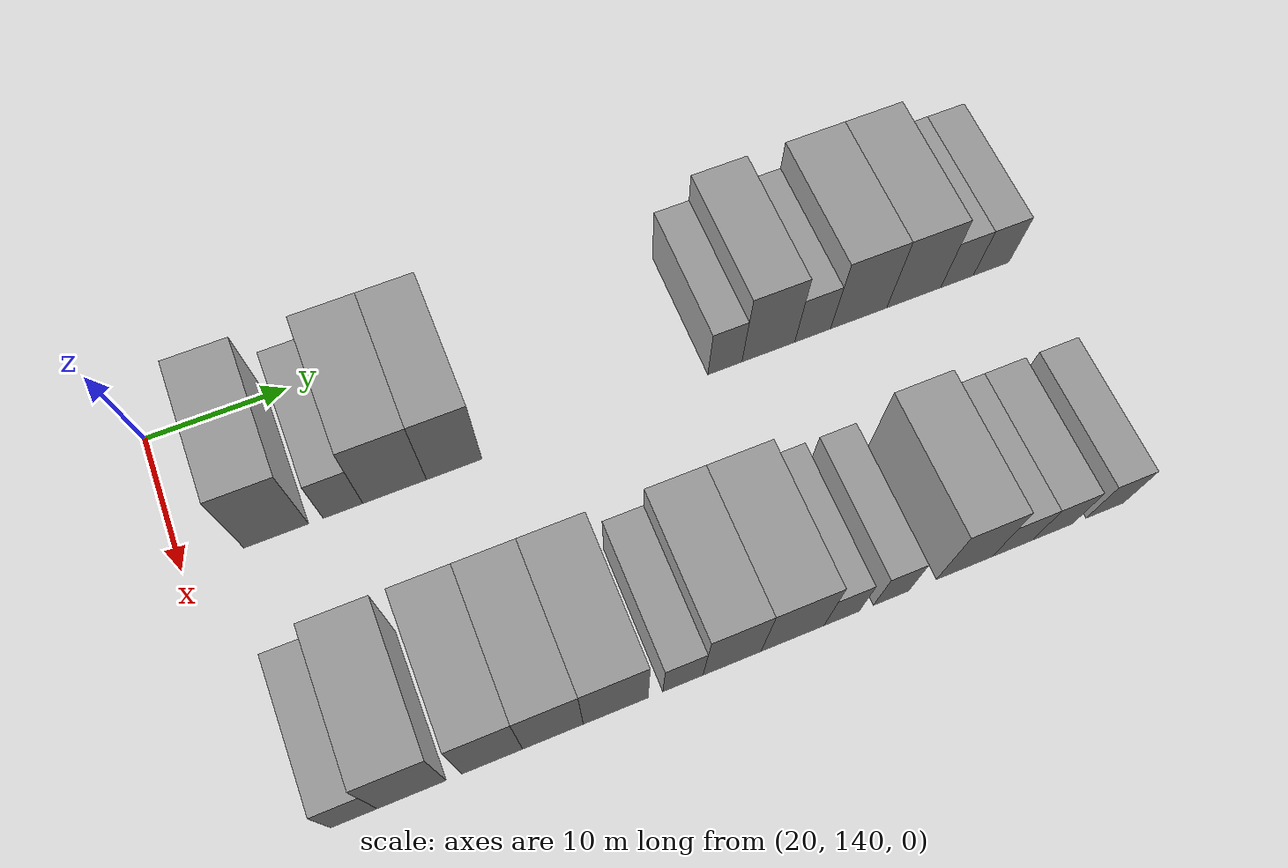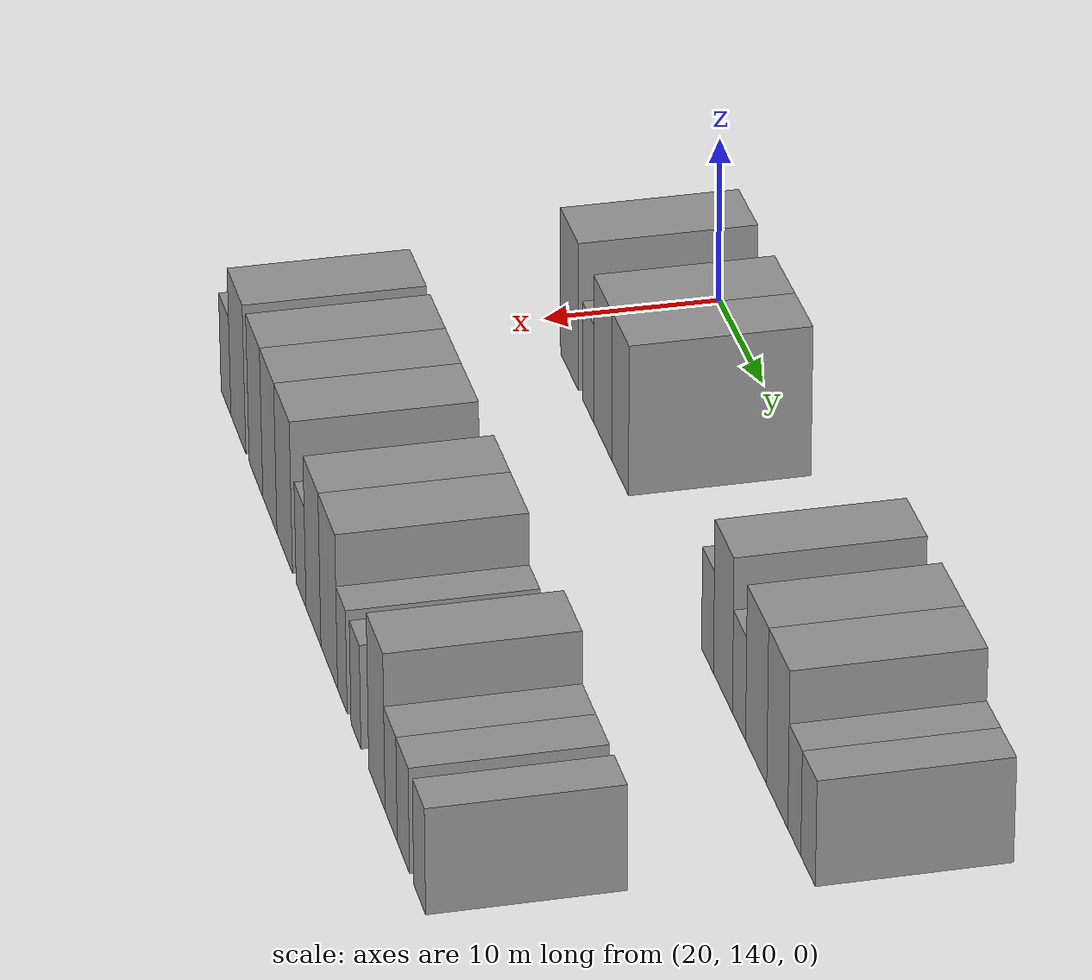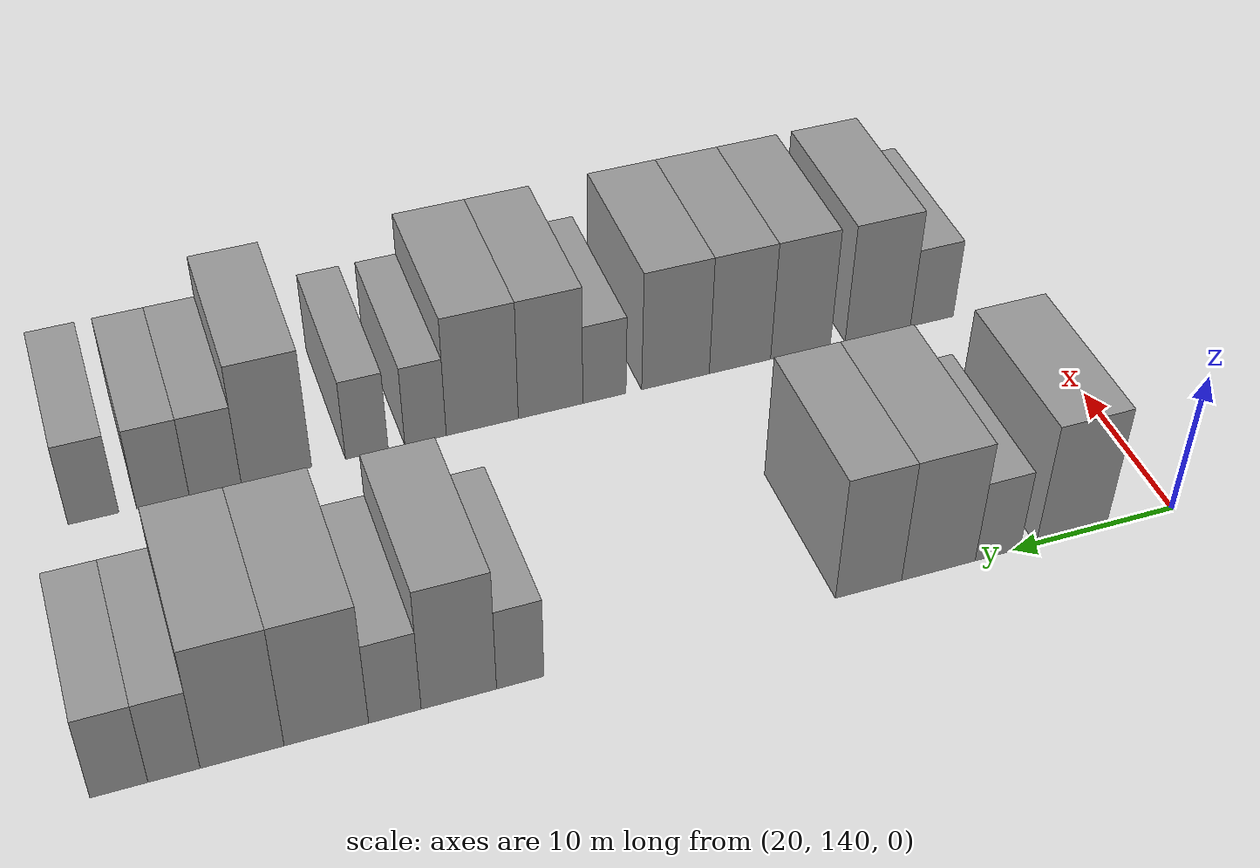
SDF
<sdf version="1.6">
 <world name="default">
  <model name="building_90">
   <static>1</static>
   <pose>25.0000 146.3913 0 0.000000 0.000000 0.000000</pose>
   <link name="link">
    <pose>0 0 4.50 0 0 0</pose>
    <collision name="collision"><geometry><box><size>10.0000 4.4065 9.0000</size></box></geometry></collision>
    <visual name="visual">
     <cast_shadows>0</cast_shadows>
     <geometry><box><size>10.0000 4.4065 9.0000</size></box></geometry>
     <material>
      <script>
       <uri>model://grey_wall/materials/scripts</uri>
       <uri>model://grey_wall/materials/textures</uri>
       <name>vrc/grey_wall</name>
      </script>
     </material>
    </visual>
   </link>
  </model>
  <model name="building_91">
   <static>1</static>
   <pose>25.0000 150.9687 0 0.000000 0.000000 0.000000</pose>
   <link name="link">
    <pose>0 0 3.00 0 0 0</pose>
    <collision name="collision"><geometry><box><size>10.0000 2.7483 6.0000</size></box></geometry></collision>
    <visual name="visual">
     <cast_shadows>0</cast_shadows>
     <geometry><box><size>10.0000 2.7483 6.0000</size></box></geometry>
     <material>
      <script>
       <uri>model://grey_wall/materials/scripts</uri>
       <uri>model://grey_wall/materials/textures</uri>
       <name>vrc/grey_wall</name>
      </script>
     </material>
    </visual>
   </link>
  </model>
  <model name="building_92">
   <static>1</static>
   <pose>25.0000 154.5702 0 0.000000 0.000000 0.000000</pose>
   <link name="link">
    <pose>0 0 4.50 0 0 0</pose>
    <collision name="collision"><geometry><box><size>10.0000 4.4548 9.0000</size></box></geometry></collision>
    <visual name="visual">
     <cast_shadows>0</cast_shadows>
     <geometry><box><size>10.0000 4.4548 9.0000</size></box></geometry>
     <material>
      <script>
       <uri>model://grey_wall/materials/scripts</uri>
       <uri>model://grey_wall/materials/textures</uri>
       <name>vrc/grey_wall</name>
      </script>
     </material>
    </visual>
   </link>
  </model>
  <model name="building_93">
   <static>1</static>
   <pose>25.0000 158.7625 0 0.000000 0.000000 0.000000</pose>
   <link name="link">
    <pose>0 0 4.50 0 0 0</pose>
    <collision name="collision"><geometry><box><size>10.0000 3.9299 9.0000</size></box></geometry></collision>
    <visual name="visual">
     <cast_shadows>0</cast_shadows>
     <geometry><box><size>10.0000 3.9299 9.0000</size></box></geometry>
     <material>
      <script>
       <uri>model://grey_wall/materials/scripts</uri>
       <uri>model://grey_wall/materials/textures</uri>
       <name>vrc/grey_wall</name>
      </script>
     </material>
    </visual>
   </link>
  </model>
  <model name="building_94">
   <static>1</static>
   <pose>25.0000 178.5883 0 0.000000 0.000000 0.000000</pose>
   <link name="link">
    <pose>0 0 3.00 0 0 0</pose>
    <collision name="collision"><geometry><box><size>10.0000 2.5739 6.0000</size></box></geometry></collision>
    <visual name="visual">
     <cast_shadows>0</cast_shadows>
     <geometry><box><size>10.0000 2.5739 6.0000</size></box></geometry>
     <material>
      <script>
       <uri>model://grey_wall/materials/scripts</uri>
       <uri>model://grey_wall/materials/textures</uri>
       <name>vrc/grey_wall</name>
      </script>
     </material>
    </visual>
   </link>
  </model>
  <model name="building_95">
   <static>1</static>
   <pose>25.0000 181.8974 0 0.000000 0.000000 0.000000</pose>
   <link name="link">
    <pose>0 0 4.50 0 0 0</pose>
    <collision name="collision"><geometry><box><size>10.0000 4.0443 9.0000</size></box></geometry></collision>
    <visual name="visual">
     <cast_shadows>0</cast_shadows>
     <geometry><box><size>10.0000 4.0443 9.0000</size></box></geometry>
     <material>
      <script>
       <uri>model://grey_wall/materials/scripts</uri>
       <uri>model://grey_wall/materials/textures</uri>
       <name>vrc/grey_wall</name>
      </script>
     </material>
    </visual>
   </link>
  </model>
  <model name="building_96">
   <static>1</static>
   <pose>25.0000 185.3083 0 0.000000 0.000000 0.000000</pose>
   <link name="link">
    <pose>0 0 3.00 0 0 0</pose>
    <collision name="collision"><geometry><box><size>10.0000 2.7775 6.0000</size></box></geometry></collision>
    <visual name="visual">
     <cast_shadows>0</cast_shadows>
     <geometry><box><size>10.0000 2.7775 6.0000</size></box></geometry>
     <material>
      <script>
       <uri>model://grey_wall/materials/scripts</uri>
       <uri>model://grey_wall/materials/textures</uri>
       <name>vrc/grey_wall</name>
      </script>
     </material>
    </visual>
   </link>
  </model>
  <model name="building_97">
   <static>1</static>
   <pose>25.0000 188.8926 0 0.000000 0.000000 0.000000</pose>
   <link name="link">
    <pose>0 0 4.50 0 0 0</pose>
    <collision name="collision"><geometry><box><size>10.0000 4.3911 9.0000</size></box></geometry></collision>
    <visual name="visual">
     <cast_shadows>0</cast_shadows>
     <geometry><box><size>10.0000 4.3911 9.0000</size></box></geometry>
     <material>
      <script>
       <uri>model://grey_wall/materials/scripts</uri>
       <uri>model://grey_wall/materials/textures</uri>
       <name>vrc/grey_wall</name>
      </script>
     </material>
    </visual>
   </link>
  </model>
  <model name="building_98">
   <static>1</static>
   <pose>25.0000 193.2294 0 0.000000 0.000000 0.000000</pose>
   <link name="link">
    <pose>0 0 4.50 0 0 0</pose>
    <collision name="collision"><geometry><box><size>10.0000 4.2827 9.0000</size></box></geometry></collision>
    <visual name="visual">
     <cast_shadows>0</cast_shadows>
     <geometry><box><size>10.0000 4.2827 9.0000</size></box></geometry>
     <material>
      <script>
       <uri>model://grey_wall/materials/scripts</uri>
       <uri>model://grey_wall/materials/textures</uri>
       <name>vrc/grey_wall</name>
      </script>
     </material>
    </visual>
   </link>
  </model>
  <model name="building_99">
   <static>1</static>
   <pose>25.0000 196.6763 0 0.000000 0.000000 0.000000</pose>
   <link name="link">
    <pose>0 0 3.00 0 0 0</pose>
    <collision name="collision"><geometry><box><size>10.0000 2.6111 6.0000</size></box></geometry></collision>
    <visual name="visual">
     <cast_shadows>0</cast_shadows>
     <geometry><box><size>10.0000 2.6111 6.0000</size></box></geometry>
     <material>
      <script>
       <uri>model://grey_wall/materials/scripts</uri>
       <uri>model://grey_wall/materials/textures</uri>
       <name>vrc/grey_wall</name>
      </script>
     </material>
    </visual>
   </link>
  </model>
  <model name="building_100">
   <static>1</static>
   <pose>25.0000 199.4241 0 0.000000 0.000000 0.000000</pose>
   <link name="link">
    <pose>0 0 3.00 0 0 0</pose>
    <collision name="collision"><geometry><box><size>10.0000 2.8844 6.0000</size></box></geometry></collision>
    <visual name="visual">
     <cast_shadows>0</cast_shadows>
     <geometry><box><size>10.0000 2.8844 6.0000</size></box></geometry>
     <material>
      <script>
       <uri>model://grey_wall/materials/scripts</uri>
       <uri>model://grey_wall/materials/textures</uri>
       <name>vrc/grey_wall</name>
      </script>
     </material>
    </visual>
   </link>
  </model>
  <model name="building_183">
   <static>1</static>
   <pose>44.0000 145.7461 0 0.000000 0.000000 0.000000</pose>
   <link name="link">
    <pose>0 0 3.00 0 0 0</pose>
    <collision name="collision"><geometry><box><size>10.0000 2.9446 6.0000</size></box></geometry></collision>
    <visual name="visual">
     <cast_shadows>0</cast_shadows>
     <geometry><box><size>10.0000 2.9446 6.0000</size></box></geometry>
     <material>
      <script>
       <uri>model://grey_wall/materials/scripts</uri>
       <uri>model://grey_wall/materials/textures</uri>
       <name>vrc/grey_wall</name>
      </script>
     </material>
    </visual>
   </link>
  </model>
  <model name="building_184">
   <static>1</static>
   <pose>44.0000 149.4260 0 0.000000 0.000000 0.000000</pose>
   <link name="link">
    <pose>0 0 4.50 0 0 0</pose>
    <collision name="collision"><geometry><box><size>10.0000 4.4152 9.0000</size></box></geometry></collision>
    <visual name="visual">
     <cast_shadows>0</cast_shadows>
     <geometry><box><size>10.0000 4.4152 9.0000</size></box></geometry>
     <material>
      <script>
       <uri>model://grey_wall/materials/scripts</uri>
       <uri>model://grey_wall/materials/textures</uri>
       <name>vrc/grey_wall</name>
      </script>
     </material>
    </visual>
   </link>
  </model>
  <model name="building_185">
   <static>1</static>
   <pose>44.0000 154.6181 0 0.000000 0.000000 0.000000</pose>
   <link name="link">
    <pose>0 0 4.50 0 0 0</pose>
    <collision name="collision"><geometry><box><size>10.0000 3.9690 9.0000</size></box></geometry></collision>
    <visual name="visual">
     <cast_shadows>0</cast_shadows>
     <geometry><box><size>10.0000 3.9690 9.0000</size></box></geometry>
     <material>
      <script>
       <uri>model://grey_wall/materials/scripts</uri>
       <uri>model://grey_wall/materials/textures</uri>
       <name>vrc/grey_wall</name>
      </script>
     </material>
    </visual>
   </link>
  </model>
  <model name="building_186">
   <static>1</static>
   <pose>44.0000 158.6096 0 0.000000 0.000000 0.000000</pose>
   <link name="link">
    <pose>0 0 4.50 0 0 0</pose>
    <collision name="collision"><geometry><box><size>10.0000 4.0141 9.0000</size></box></geometry></collision>
    <visual name="visual">
     <cast_shadows>0</cast_shadows>
     <geometry><box><size>10.0000 4.0141 9.0000</size></box></geometry>
     <material>
      <script>
       <uri>model://grey_wall/materials/scripts</uri>
       <uri>model://grey_wall/materials/textures</uri>
       <name>vrc/grey_wall</name>
      </script>
     </material>
    </visual>
   </link>
  </model>
  <model name="building_187">
   <static>1</static>
   <pose>44.0000 162.7933 0 0.000000 0.000000 0.000000</pose>
   <link name="link">
    <pose>0 0 4.50 0 0 0</pose>
    <collision name="collision"><geometry><box><size>10.0000 4.3534 9.0000</size></box></geometry></collision>
    <visual name="visual">
     <cast_shadows>0</cast_shadows>
     <geometry><box><size>10.0000 4.3534 9.0000</size></box></geometry>
     <material>
      <script>
       <uri>model://grey_wall/materials/scripts</uri>
       <uri>model://grey_wall/materials/textures</uri>
       <name>vrc/grey_wall</name>
      </script>
     </material>
    </visual>
   </link>
  </model>
  <model name="building_188">
   <static>1</static>
   <pose>44.0000 167.3402 0 0.000000 0.000000 0.000000</pose>
   <link name="link">
    <pose>0 0 3.00 0 0 0</pose>
    <collision name="collision"><geometry><box><size>10.0000 2.7404 6.0000</size></box></geometry></collision>
    <visual name="visual">
     <cast_shadows>0</cast_shadows>
     <geometry><box><size>10.0000 2.7404 6.0000</size></box></geometry>
     <material>
      <script>
       <uri>model://grey_wall/materials/scripts</uri>
       <uri>model://grey_wall/materials/textures</uri>
       <name>vrc/grey_wall</name>
      </script>
     </material>
    </visual>
   </link>
  </model>
  <model name="building_189">
   <static>1</static>
   <pose>44.0000 170.7188 0 0.000000 0.000000 0.000000</pose>
   <link name="link">
    <pose>0 0 4.50 0 0 0</pose>
    <collision name="collision"><geometry><box><size>10.0000 4.0167 9.0000</size></box></geometry></collision>
    <visual name="visual">
     <cast_shadows>0</cast_shadows>
     <geometry><box><size>10.0000 4.0167 9.0000</size></box></geometry>
     <material>
      <script>
       <uri>model://grey_wall/materials/scripts</uri>
       <uri>model://grey_wall/materials/textures</uri>
       <name>vrc/grey_wall</name>
      </script>
     </material>
    </visual>
   </link>
  </model>
  <model name="building_190">
   <static>1</static>
   <pose>44.0000 174.9387 0 0.000000 0.000000 0.000000</pose>
   <link name="link">
    <pose>0 0 4.50 0 0 0</pose>
    <collision name="collision"><geometry><box><size>10.0000 4.4231 9.0000</size></box></geometry></collision>
    <visual name="visual">
     <cast_shadows>0</cast_shadows>
     <geometry><box><size>10.0000 4.4231 9.0000</size></box></geometry>
     <material>
      <script>
       <uri>model://grey_wall/materials/scripts</uri>
       <uri>model://grey_wall/materials/textures</uri>
       <name>vrc/grey_wall</name>
      </script>
     </material>
    </visual>
   </link>
  </model>
  <model name="building_191">
   <static>1</static>
   <pose>44.0000 178.4056 0 0.000000 0.000000 0.000000</pose>
   <link name="link">
    <pose>0 0 3.00 0 0 0</pose>
    <collision name="collision"><geometry><box><size>10.0000 2.5108 6.0000</size></box></geometry></collision>
    <visual name="visual">
     <cast_shadows>0</cast_shadows>
     <geometry><box><size>10.0000 2.5108 6.0000</size></box></geometry>
     <material>
      <script>
       <uri>model://grey_wall/materials/scripts</uri>
       <uri>model://grey_wall/materials/textures</uri>
       <name>vrc/grey_wall</name>
      </script>
     </material>
    </visual>
   </link>
  </model>
  <model name="building_192">
   <static>1</static>
   <pose>44.0000 181.9360 0 0.000000 0.000000 0.000000</pose>
   <link name="link">
    <pose>0 0 3.00 0 0 0</pose>
    <collision name="collision"><geometry><box><size>10.0000 2.5499 6.0000</size></box></geometry></collision>
    <visual name="visual">
     <cast_shadows>0</cast_shadows>
     <geometry><box><size>10.0000 2.5499 6.0000</size></box></geometry>
     <material>
      <script>
       <uri>model://grey_wall/materials/scripts</uri>
       <uri>model://grey_wall/materials/textures</uri>
       <name>vrc/grey_wall</name>
      </script>
     </material>
    </visual>
   </link>
  </model>
  <model name="building_193">
   <static>1</static>
   <pose>44.0000 187.2684 0 0.000000 0.000000 0.000000</pose>
   <link name="link">
    <pose>0 0 4.50 0 0 0</pose>
    <collision name="collision"><geometry><box><size>10.0000 4.1149 9.0000</size></box></geometry></collision>
    <visual name="visual">
     <cast_shadows>0</cast_shadows>
     <geometry><box><size>10.0000 4.1149 9.0000</size></box></geometry>
     <material>
      <script>
       <uri>model://grey_wall/materials/scripts</uri>
       <uri>model://grey_wall/materials/textures</uri>
       <name>vrc/grey_wall</name>
      </script>
     </material>
    </visual>
   </link>
  </model>
  <model name="building_194">
   <static>1</static>
   <pose>44.0000 190.8258 0 0.000000 0.000000 0.000000</pose>
   <link name="link">
    <pose>0 0 3.00 0 0 0</pose>
    <collision name="collision"><geometry><box><size>10.0000 2.9999 6.0000</size></box></geometry></collision>
    <visual name="visual">
     <cast_shadows>0</cast_shadows>
     <geometry><box><size>10.0000 2.9999 6.0000</size></box></geometry>
     <material>
      <script>
       <uri>model://grey_wall/materials/scripts</uri>
       <uri>model://grey_wall/materials/textures</uri>
       <name>vrc/grey_wall</name>
      </script>
     </material>
    </visual>
   </link>
  </model>
  <model name="building_195">
   <static>1</static>
   <pose>44.0000 193.8202 0 0.000000 0.000000 0.000000</pose>
   <link name="link">
    <pose>0 0 3.00 0 0 0</pose>
    <collision name="collision"><geometry><box><size>10.0000 2.9889 6.0000</size></box></geometry></collision>
    <visual name="visual">
     <cast_shadows>0</cast_shadows>
     <geometry><box><size>10.0000 2.9889 6.0000</size></box></geometry>
     <material>
      <script>
       <uri>model://grey_wall/materials/scripts</uri>
       <uri>model://grey_wall/materials/textures</uri>
       <name>vrc/grey_wall</name>
      </script>
     </material>
    </visual>
   </link>
  </model>
  <model name="building_196">
   <static>1</static>
   <pose>44.0000 197.7403 0 0.000000 0.000000 0.000000</pose>
   <link name="link">
    <pose>0 0 3.00 0 0 0</pose>
    <collision name="collision"><geometry><box><size>10.0000 2.8512 6.0000</size></box></geometry></collision>
    <visual name="visual">
     <cast_shadows>0</cast_shadows>
     <geometry><box><size>10.0000 2.8512 6.0000</size></box></geometry>
     <material>
      <script>
       <uri>model://grey_wall/materials/scripts</uri>
       <uri>model://grey_wall/materials/textures</uri>
       <name>vrc/grey_wall</name>
      </script>
     </material>
    </visual>
   </link>
  </model>
 </world>
</sdf>
